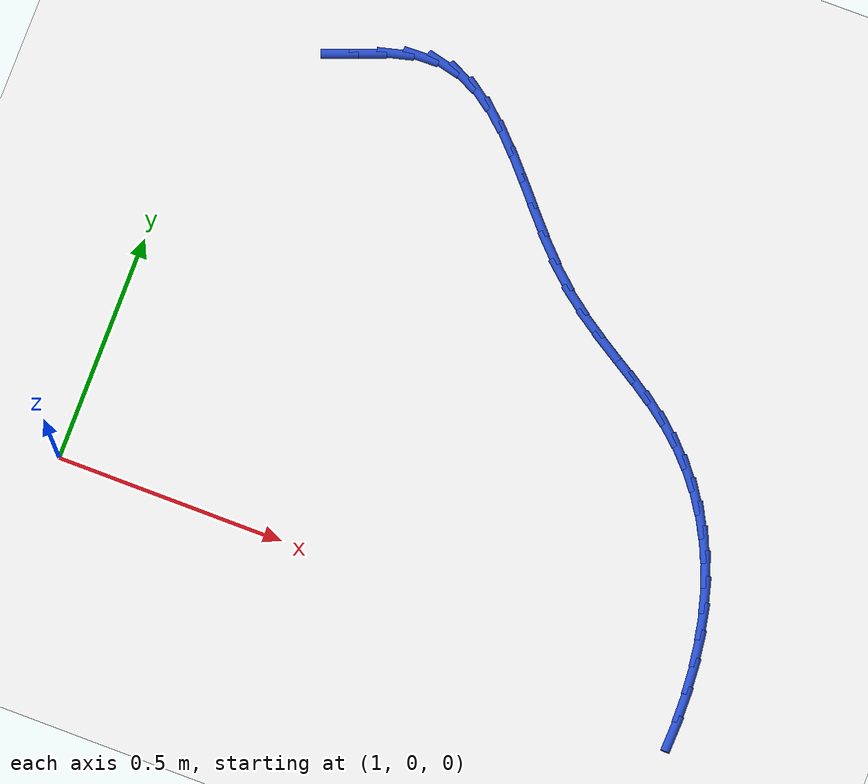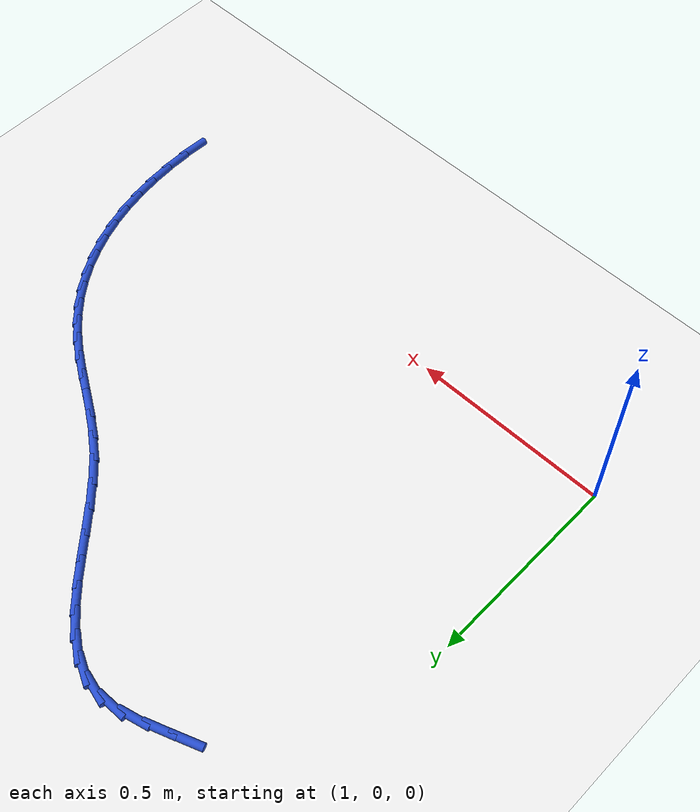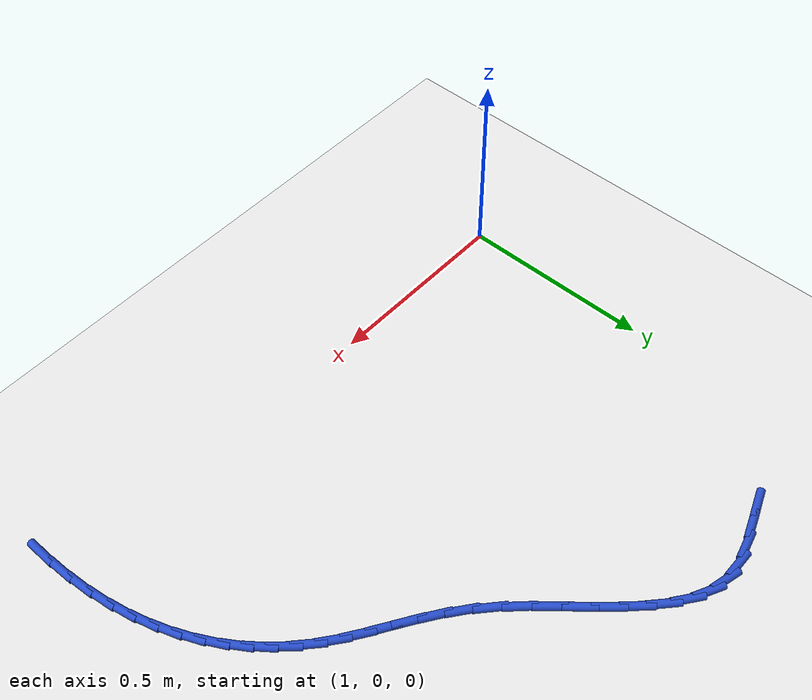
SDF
<sdf version="1.6">
 <world name="default">
  <model name="ground_plane">
   <static>1</static>
   <link name="link">
    <collision name="collision">
     <geometry><plane><normal>0 0 1</normal><size>100 100</size></plane></geometry>
     <surface><friction><ode><mu>100</mu><mu2>50</mu2></ode></friction></surface>
    </collision>
    <visual name="visual">
     <cast_shadows>0</cast_shadows>
     <geometry><plane><normal>0 0 1</normal><size>100 100</size></plane></geometry>
     <material>
      <script><uri>file://media/materials/scripts/gazebo.material</uri><name>Gazebo/WhiteGlow</name></script>
     </material>
    </visual>
   </link>
  </model>
  <model name="line">
   <link name="link_34">
    <pose>1.2437586530860203 1.018583379582247 0.01 0 1.57 0.3648174885554277</pose>
    <collision name="collision">
     <geometry><cylinder><radius>0.01</radius><length>0.08</length></cylinder></geometry>
    </collision>
    <visual name="visual">
     <material>
      <script><name>Gazebo/Blue</name><uri>file://media/materials/scripts/gazebo.material</uri></script>
     </material>
     <geometry><cylinder><radius>0.01</radius><length>0.08</length></cylinder></geometry>
    </visual>
   </link>
   <link name="link_35">
    <pose>1.2998057235495786 1.039988479459806 0.01 0 1.57 0.35278137020985545</pose>
    <collision name="collision">
     <geometry><cylinder><radius>0.01</radius><length>0.08</length></cylinder></geometry>
    </collision>
    <visual name="visual">
     <material>
      <script><name>Gazebo/Blue</name><uri>file://media/materials/scripts/gazebo.material</uri></script>
     </material>
     <geometry><cylinder><radius>0.01</radius><length>0.08</length></cylinder></geometry>
    </visual>
   </link>
   <link name="link_36">
    <pose>1.3549531405274007 1.0602928585218405 0.01 0 1.57 0.24737030257129036</pose>
    <collision name="collision">
     <geometry><cylinder><radius>0.01</radius><length>0.08</length></cylinder></geometry>
    </collision>
    <visual name="visual">
     <material>
      <script><name>Gazebo/Blue</name><uri>file://media/materials/scripts/gazebo.material</uri></script>
     </material>
     <geometry><cylinder><radius>0.01</radius><length>0.08</length></cylinder></geometry>
    </visual>
   </link>
   <link name="link_37">
    <pose>1.4082542696655973 1.0737536664974958 0.01 0 1.57 0.02542304244708747</pose>
    <collision name="collision">
     <geometry><cylinder><radius>0.01</radius><length>0.08</length></cylinder></geometry>
    </collision>
    <visual name="visual">
     <material>
      <script><name>Gazebo/Blue</name><uri>file://media/materials/scripts/gazebo.material</uri></script>
     </material>
     <geometry><cylinder><radius>0.01</radius><length>0.08</length></cylinder></geometry>
    </visual>
   </link>
   <link name="link_38">
    <pose>1.458840111374872 1.0750399896406462 0.01 0 1.57 -0.2403758050531218</pose>
    <collision name="collision">
     <geometry><cylinder><radius>0.01</radius><length>0.08</length></cylinder></geometry>
    </collision>
    <visual name="visual">
     <material>
      <script><name>Gazebo/Blue</name><uri>file://media/materials/scripts/gazebo.material</uri></script>
     </material>
     <geometry><cylinder><radius>0.01</radius><length>0.08</length></cylinder></geometry>
    </visual>
   </link>
   <link name="link_39">
    <pose>1.5066880215276783 1.0633117467520308 0.01 0 1.57 -0.46394798809229254</pose>
    <collision name="collision">
     <geometry><cylinder><radius>0.01</radius><length>0.08</length></cylinder></geometry>
    </collision>
    <visual name="visual">
     <material>
      <script><name>Gazebo/Blue</name><uri>file://media/materials/scripts/gazebo.material</uri></script>
     </material>
     <geometry><cylinder><radius>0.01</radius><length>0.08</length></cylinder></geometry>
    </visual>
   </link>
   <link name="link_40">
    <pose>1.5522958610643076 1.0404906998591301 0.01 0 1.57 -0.6294515822383333</pose>
    <collision name="collision">
     <geometry><cylinder><radius>0.01</radius><length>0.08</length></cylinder></geometry>
    </collision>
    <visual name="visual">
     <material>
      <script><name>Gazebo/Blue</name><uri>file://media/materials/scripts/gazebo.material</uri></script>
     </material>
     <geometry><cylinder><radius>0.01</radius><length>0.08</length></cylinder></geometry>
    </visual>
   </link>
   <link name="link_41">
    <pose>1.5961690878775796 1.0085389210520521 0.01 0 1.57 -0.7423299125944407</pose>
    <collision name="collision">
     <geometry><cylinder><radius>0.01</radius><length>0.08</length></cylinder></geometry>
    </collision>
    <visual name="visual">
     <material>
      <script><name>Gazebo/Blue</name><uri>file://media/materials/scripts/gazebo.material</uri></script>
     </material>
     <geometry><cylinder><radius>0.01</radius><length>0.08</length></cylinder></geometry>
    </visual>
   </link>
   <link name="link_42">
    <pose>1.6388131598603137 0.9694184824209053 0.01 0 1.57 -0.8132949688377931</pose>
    <collision name="collision">
     <geometry><cylinder><radius>0.01</radius><length>0.08</length></cylinder></geometry>
    </collision>
    <visual name="visual">
     <material>
      <script><name>Gazebo/Blue</name><uri>file://media/materials/scripts/gazebo.material</uri></script>
     </material>
     <geometry><cylinder><radius>0.01</radius><length>0.08</length></cylinder></geometry>
    </visual>
   </link>
   <link name="link_43">
    <pose>1.6807335349053287 0.925091456055798 0.01 0 1.57 -0.8510498878938815</pose>
    <collision name="collision">
     <geometry><cylinder><radius>0.01</radius><length>0.08</length></cylinder></geometry>
    </collision>
    <visual name="visual">
     <material>
      <script><name>Gazebo/Blue</name><uri>file://media/materials/scripts/gazebo.material</uri></script>
     </material>
     <geometry><cylinder><radius>0.01</radius><length>0.08</length></cylinder></geometry>
    </visual>
   </link>
   <link name="link_44">
    <pose>1.722435670905444 0.8775199140468397 0.01 0 1.57 -0.8608204147605858</pose>
    <collision name="collision">
     <geometry><cylinder><radius>0.01</radius><length>0.08</length></cylinder></geometry>
    </collision>
    <visual name="visual">
     <material>
      <script><name>Gazebo/Blue</name><uri>file://media/materials/scripts/gazebo.material</uri></script>
     </material>
     <geometry><cylinder><radius>0.01</radius><length>0.08</length></cylinder></geometry>
    </visual>
   </link>
   <link name="link_45">
    <pose>1.764425025753479 0.8286659284841378 0.01 0 1.57 -0.8446135893387184</pose>
    <collision name="collision">
     <geometry><cylinder><radius>0.01</radius><length>0.08</length></cylinder></geometry>
    </collision>
    <visual name="visual">
     <material>
      <script><name>Gazebo/Blue</name><uri>file://media/materials/scripts/gazebo.material</uri></script>
     </material>
     <geometry><cylinder><radius>0.01</radius><length>0.08</length></cylinder></geometry>
    </visual>
   </link>
   <link name="link_46">
    <pose>1.807207057342254 0.7804915714578011 0.01 0 1.57 -0.8016052524917788</pose>
    <collision name="collision">
     <geometry><cylinder><radius>0.01</radius><length>0.08</length></cylinder></geometry>
    </collision>
    <visual name="visual">
     <material>
      <script><name>Gazebo/Blue</name><uri>file://media/materials/scripts/gazebo.material</uri></script>
     </material>
     <geometry><cylinder><radius>0.01</radius><length>0.08</length></cylinder></geometry>
    </visual>
   </link>
   <link name="link_47">
    <pose>1.8512872235645867 0.7349589150579381 0.01 0 1.57 -0.7291365238946483</pose>
    <collision name="collision">
     <geometry><cylinder><radius>0.01</radius><length>0.08</length></cylinder></geometry>
    </collision>
    <visual name="visual">
     <material>
      <script><name>Gazebo/Blue</name><uri>file://media/materials/scripts/gazebo.material</uri></script>
     </material>
     <geometry><cylinder><radius>0.01</radius><length>0.08</length></cylinder></geometry>
    </visual>
   </link>
   <link name="link_48">
    <pose>1.8971517197756895 0.6939852383378323 0.01 0 1.57 -0.6482814094447278</pose>
    <collision name="collision">
     <geometry><cylinder><radius>0.01</radius><length>0.08</length></cylinder></geometry>
    </collision>
    <visual name="visual">
     <material>
      <script><name>Gazebo/Blue</name><uri>file://media/materials/scripts/gazebo.material</uri></script>
     </material>
     <geometry><cylinder><radius>0.01</radius><length>0.08</length></cylinder></geometry>
    </visual>
   </link>
   <link name="link_49">
    <pose>1.9446494581441476 0.6580058842825305 0.01 0 1.57 -0.5908114144411534</pose>
    <collision name="collision">
     <geometry><cylinder><radius>0.01</radius><length>0.08</length></cylinder></geometry>
    </collision>
    <visual name="visual">
     <material>
      <script><name>Gazebo/Blue</name><uri>file://media/materials/scripts/gazebo.material</uri></script>
     </material>
     <geometry><cylinder><radius>0.01</radius><length>0.08</length></cylinder></geometry>
    </visual>
   </link>
   <link name="link_50">
    <pose>1.992860803367351 0.625669018305763 0.01 0 1.57 -0.5612642404024285</pose>
    <collision name="collision">
     <geometry><cylinder><radius>0.01</radius><length>0.08</length></cylinder></geometry>
    </collision>
    <visual name="visual">
     <material>
      <script><name>Gazebo/Blue</name><uri>file://media/materials/scripts/gazebo.material</uri></script>
     </material>
     <geometry><cylinder><radius>0.01</radius><length>0.08</length></cylinder></geometry>
    </visual>
   </link>
   <link name="link_51">
    <pose>2.04082031573935 0.5955162924237373 0.01 0 1.57 -0.5618700017288955</pose>
    <collision name="collision">
     <geometry><cylinder><radius>0.01</radius><length>0.08</length></cylinder></geometry>
    </collision>
    <visual name="visual">
     <material>
      <script><name>Gazebo/Blue</name><uri>file://media/materials/scripts/gazebo.material</uri></script>
     </material>
     <geometry><cylinder><radius>0.01</radius><length>0.08</length></cylinder></geometry>
    </visual>
   </link>
   <link name="link_52">
    <pose>2.0875625555541957 0.5660893586526607 0.01 0 1.57 -0.595009864694249</pose>
    <collision name="collision">
     <geometry><cylinder><radius>0.01</radius><length>0.08</length></cylinder></geometry>
    </collision>
    <visual name="visual">
     <material>
      <script><name>Gazebo/Blue</name><uri>file://media/materials/scripts/gazebo.material</uri></script>
     </material>
     <geometry><cylinder><radius>0.01</radius><length>0.08</length></cylinder></geometry>
    </visual>
   </link>
   <link name="link_53">
    <pose>2.1321220831059393 0.5359298690087401 0.01 0 1.57 -0.6617565200073732</pose>
    <collision name="collision">
     <geometry><cylinder><radius>0.01</radius><length>0.08</length></cylinder></geometry>
    </collision>
    <visual name="visual">
     <material>
      <script><name>Gazebo/Blue</name><uri>file://media/materials/scripts/gazebo.material</uri></script>
     </material>
     <geometry><cylinder><radius>0.01</radius><length>0.08</length></cylinder></geometry>
    </visual>
   </link>
   <link name="link_54">
    <pose>2.1735748496251235 0.5036413433957473 0.01 0 1.57 -0.7447368143904054</pose>
    <collision name="collision">
     <geometry><cylinder><radius>0.01</radius><length>0.08</length></cylinder></geometry>
    </collision>
    <visual name="visual">
     <material>
      <script><name>Gazebo/Blue</name><uri>file://media/materials/scripts/gazebo.material</uri></script>
     </material>
     <geometry><cylinder><radius>0.01</radius><length>0.08</length></cylinder></geometry>
    </visual>
   </link>
   <link name="link_55">
    <pose>2.2115422078232054 0.46864252457439476 0.01 0 1.57 -0.8300566614779783</pose>
    <collision name="collision">
     <geometry><cylinder><radius>0.01</radius><length>0.08</length></cylinder></geometry>
    </collision>
    <visual name="visual">
     <material>
      <script><name>Gazebo/Blue</name><uri>file://media/materials/scripts/gazebo.material</uri></script>
     </material>
     <geometry><cylinder><radius>0.01</radius><length>0.08</length></cylinder></geometry>
    </visual>
   </link>
   <link name="link_56">
    <pose>2.246030497160086 0.4309276029488905 0.01 0 1.57 -0.9162256293910833</pose>
    <collision name="collision">
     <geometry><cylinder><radius>0.01</radius><length>0.08</length></cylinder></geometry>
    </collision>
    <visual name="visual">
     <material>
      <script><name>Gazebo/Blue</name><uri>file://media/materials/scripts/gazebo.material</uri></script>
     </material>
     <geometry><cylinder><radius>0.01</radius><length>0.08</length></cylinder></geometry>
    </visual>
   </link>
   <link name="link_57">
    <pose>2.277054139913668 0.3905028504784358 0.01 0 1.57 -1.0019553804719745</pose>
    <collision name="collision">
     <geometry><cylinder><radius>0.01</radius><length>0.08</length></cylinder></geometry>
    </collision>
    <visual name="visual">
     <material>
      <script><name>Gazebo/Blue</name><uri>file://media/materials/scripts/gazebo.material</uri></script>
     </material>
     <geometry><cylinder><radius>0.01</radius><length>0.08</length></cylinder></geometry>
    </visual>
   </link>
   <link name="link_58">
    <pose>2.304627558361859 0.34737453912223276 0.01 0 1.57 -1.0859958177381297</pose>
    <collision name="collision">
     <geometry><cylinder><radius>0.01</radius><length>0.08</length></cylinder></geometry>
    </collision>
    <visual name="visual">
     <material>
      <script><name>Gazebo/Blue</name><uri>file://media/materials/scripts/gazebo.material</uri></script>
     </material>
     <geometry><cylinder><radius>0.01</radius><length>0.08</length></cylinder></geometry>
    </visual>
   </link>
   <link name="link_59">
    <pose>2.3287651747825606 0.3015489408394832 0.01 0 1.57 -1.1672391085544251</pose>
    <collision name="collision">
     <geometry><cylinder><radius>0.01</radius><length>0.08</length></cylinder></geometry>
    </collision>
    <visual name="visual">
     <material>
      <script><name>Gazebo/Blue</name><uri>file://media/materials/scripts/gazebo.material</uri></script>
     </material>
     <geometry><cylinder><radius>0.01</radius><length>0.08</length></cylinder></geometry>
    </visual>
   </link>
   <link name="link_60">
    <pose>2.349481411453678 0.2530323275893892 0.01 0 1.57 -1.2447952151801294</pose>
    <collision name="collision">
     <geometry><cylinder><radius>0.01</radius><length>0.08</length></cylinder></geometry>
    </collision>
    <visual name="visual">
     <material>
      <script><name>Gazebo/Blue</name><uri>file://media/materials/scripts/gazebo.material</uri></script>
     </material>
     <geometry><cylinder><radius>0.01</radius><length>0.08</length></cylinder></geometry>
    </visual>
   </link>
   <link name="link_61">
    <pose>2.3667906906531173 0.2018309713311526 0.01 0 1.57 -1.3180285104486715</pose>
    <collision name="collision">
     <geometry><cylinder><radius>0.01</radius><length>0.08</length></cylinder></geometry>
    </collision>
    <visual name="visual">
     <material>
      <script><name>Gazebo/Blue</name><uri>file://media/materials/scripts/gazebo.material</uri></script>
     </material>
     <geometry><cylinder><radius>0.01</radius><length>0.08</length></cylinder></geometry>
    </visual>
   </link>
   <link name="link_62">
    <pose>2.3807074346587815 0.1479511440239749 0.01 0 1.57 -1.3865568003092024</pose>
    <collision name="collision">
     <geometry><cylinder><radius>0.01</radius><length>0.08</length></cylinder></geometry>
    </collision>
    <visual name="visual">
     <material>
      <script><name>Gazebo/Blue</name><uri>file://media/materials/scripts/gazebo.material</uri></script>
     </material>
     <geometry><cylinder><radius>0.01</radius><length>0.08</length></cylinder></geometry>
    </visual>
   </link>
   <link name="link_63">
    <pose>2.391246065748577 0.09139911762705814 0.01 0 1.57 -1.4502224739324403</pose>
    <collision name="collision">
     <geometry><cylinder><radius>0.01</radius><length>0.08</length></cylinder></geometry>
    </collision>
    <visual name="visual">
     <material>
      <script><name>Gazebo/Blue</name><uri>file://media/materials/scripts/gazebo.material</uri></script>
     </material>
     <geometry><cylinder><radius>0.01</radius><length>0.08</length></cylinder></geometry>
    </visual>
   </link>
   <link name="link_64">
    <pose>2.3984210062004063 0.03218116409960489 0.01 0 1.57 -1.5090484867118705</pose>
    <collision name="collision">
     <geometry><cylinder><radius>0.01</radius><length>0.08</length></cylinder></geometry>
    </collision>
    <visual name="visual">
     <material>
      <script><name>Gazebo/Blue</name><uri>file://media/materials/scripts/gazebo.material</uri></script>
     </material>
     <geometry><cylinder><radius>0.01</radius><length>0.08</length></cylinder></geometry>
    </visual>
   </link>
   <link name="link_65">
    <pose>2.4022466782921756 -0.029696444599183677 0.01 0 1.57 -1.5631904225570012</pose>
    <collision name="collision">
     <geometry><cylinder><radius>0.01</radius><length>0.08</length></cylinder></geometry>
    </collision>
    <visual name="visual">
     <material>
      <script><name>Gazebo/Blue</name><uri>file://media/materials/scripts/gazebo.material</uri></script>
     </material>
     <geometry><cylinder><radius>0.01</radius><length>0.08</length></cylinder></geometry>
    </visual>
   </link>
   <link name="link_66">
    <pose>2.4027375043017885 -0.09422743651010546 0.01 0 1.57 1.5287003751432886</pose>
    <collision name="collision">
     <geometry><cylinder><radius>0.01</radius><length>0.08</length></cylinder></geometry>
    </collision>
    <visual name="visual">
     <material>
      <script><name>Gazebo/Blue</name><uri>file://media/materials/scripts/gazebo.material</uri></script>
     </material>
     <geometry><cylinder><radius>0.01</radius><length>0.08</length></cylinder></geometry>
    </visual>
   </link>
  </model>
 </world>
</sdf>
